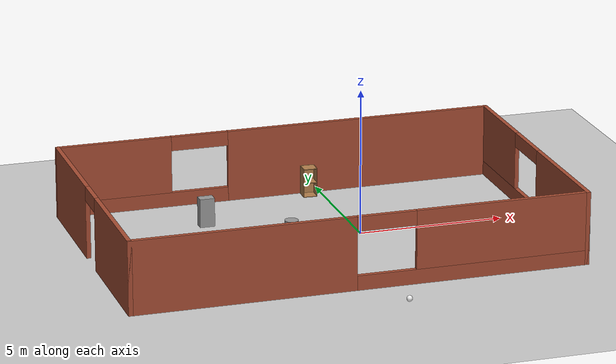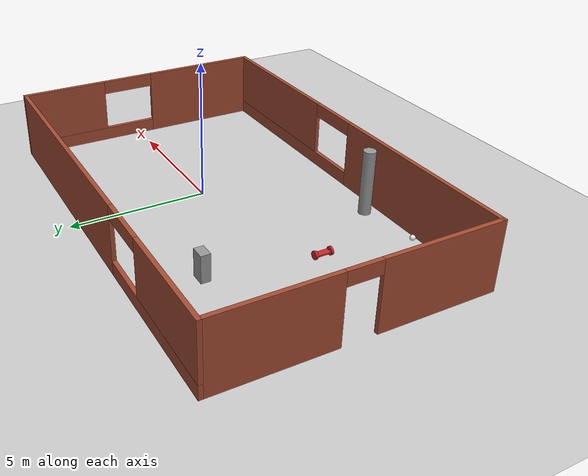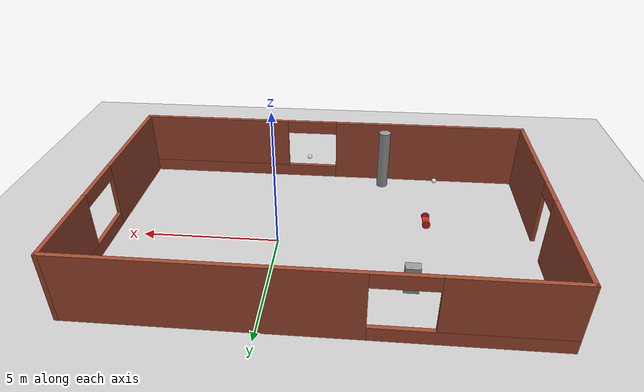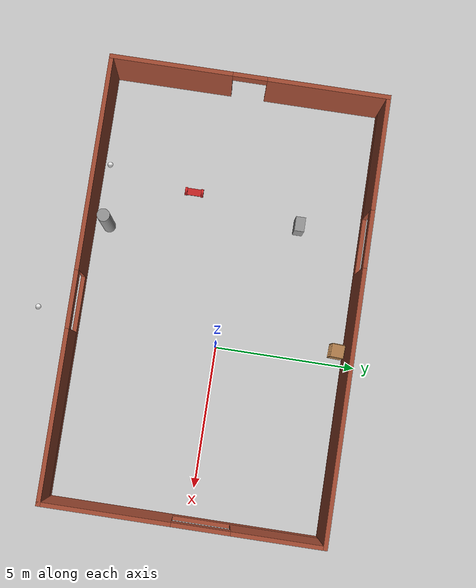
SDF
<sdf version="1.6">
 <world name="default">
  <model name="ground_plane">
   <static>1</static>
   <link name="link">
    <collision name="collision">
     <geometry><plane><normal>0 0 1</normal><size>100 100</size></plane></geometry>
     <surface><friction><ode><mu>100</mu><mu2>50</mu2></ode></friction></surface>
    </collision>
    <visual name="visual">
     <cast_shadows>0</cast_shadows>
     <geometry><plane><normal>0 0 1</normal><size>100 100</size></plane></geometry>
     <material>
      <script><uri>file://media/materials/scripts/gazebo.material</uri><name>Gazebo/Grey</name></script>
     </material>
    </visual>
   </link>
  </model>
  <model name="mybuilding">
   <pose>-1.56724 -0.21095 0 0 -0 0</pose>
   <link name="Wall_3">
    <pose>0 -4.8 0 0 -0 0</pose>
    <visual name="Wall_3_Visual_0">
     <pose>-3.97859 0 1.25 0 -0 0</pose>
     <geometry><box><size>7.54281 0.15 2.5</size></box></geometry>
     <material>
      <script><uri>file://media/materials/scripts/gazebo.material</uri><name>Gazebo/Bricks</name></script>
      <ambient>1 1 1 1</ambient>
     </material>
    </visual>
    <collision name="Wall_3_Collision_0">
     <geometry><box><size>7.54281 0.15 2.5</size></box></geometry>
     <pose>-3.97859 0 1.25 0 -0 0</pose>
    </collision>
    <visual name="Wall_3_Visual_1">
     <pose>3.77141 0 0.25 0 -0 0</pose>
     <geometry><box><size>7.95719 0.15 0.5</size></box></geometry>
     <material>
      <script><uri>file://media/materials/scripts/gazebo.material</uri><name>Gazebo/Bricks</name></script>
      <ambient>1 1 1 1</ambient>
     </material>
    </visual>
    <collision name="Wall_3_Collision_1">
     <geometry><box><size>7.95719 0.15 0.5</size></box></geometry>
     <pose>3.77141 0 0.25 0 -0 0</pose>
    </collision>
    <visual name="Wall_3_Visual_2">
     <pose>4.77141 0 1.5 0 -0 0</pose>
     <geometry><box><size>5.95719 0.15 2</size></box></geometry>
     <material>
      <script><uri>file://media/materials/scripts/gazebo.material</uri><name>Gazebo/Bricks</name></script>
      <ambient>1 1 1 1</ambient>
     </material>
    </visual>
    <collision name="Wall_3_Collision_2">
     <geometry><box><size>5.95719 0.15 2</size></box></geometry>
     <pose>4.77141 0 1.5 0 -0 0</pose>
    </collision>
    <visual name="Wall_3_Visual_3">
     <pose>0.792814 0 2.25 0 -0 0</pose>
     <geometry><box><size>2 0.15 0.5</size></box></geometry>
     <material>
      <script><uri>file://media/materials/scripts/gazebo.material</uri><name>Gazebo/Bricks</name></script>
      <ambient>1 1 1 1</ambient>
     </material>
    </visual>
    <collision name="Wall_3_Collision_3">
     <geometry><box><size>2 0.15 0.5</size></box></geometry>
     <pose>0.792814 0 2.25 0 -0 0</pose>
    </collision>
   </link>
   <link name="Wall_4">
    <pose>7.675 0 0 0 -0 1.5708</pose>
    <visual name="Wall_4_Visual_0">
     <pose>-2.62217 0 1.25 0 -0 0</pose>
     <geometry><box><size>4.50566 0.15 2.5</size></box></geometry>
     <material>
      <script><uri>file://media/materials/scripts/gazebo.material</uri><name>Gazebo/Bricks</name></script>
      <ambient>1 1 1 1</ambient>
     </material>
    </visual>
    <collision name="Wall_4_Collision_0">
     <geometry><box><size>4.50566 0.15 2.5</size></box></geometry>
     <pose>-2.62217 0 1.25 0 -0 0</pose>
    </collision>
    <visual name="Wall_4_Visual_1">
     <pose>2.25283 0 0.25 0 -0 0</pose>
     <geometry><box><size>5.24434 0.15 0.5</size></box></geometry>
     <material>
      <script><uri>file://media/materials/scripts/gazebo.material</uri><name>Gazebo/Bricks</name></script>
      <ambient>1 1 1 1</ambient>
     </material>
    </visual>
    <collision name="Wall_4_Collision_1">
     <geometry><box><size>5.24434 0.15 0.5</size></box></geometry>
     <pose>2.25283 0 0.25 0 -0 0</pose>
    </collision>
    <visual name="Wall_4_Visual_2">
     <pose>3.25283 0 1.5 0 -0 0</pose>
     <geometry><box><size>3.24434 0.15 2</size></box></geometry>
     <material>
      <script><uri>file://media/materials/scripts/gazebo.material</uri><name>Gazebo/Bricks</name></script>
      <ambient>1 1 1 1</ambient>
     </material>
    </visual>
    <collision name="Wall_4_Collision_2">
     <geometry><box><size>3.24434 0.15 2</size></box></geometry>
     <pose>3.25283 0 1.5 0 -0 0</pose>
    </collision>
    <visual name="Wall_4_Visual_3">
     <pose>0.630664 0 2.25 0 -0 0</pose>
     <geometry><box><size>2 0.15 0.5</size></box></geometry>
     <material>
      <script><uri>file://media/materials/scripts/gazebo.material</uri><name>Gazebo/Bricks</name></script>
      <ambient>1 1 1 1</ambient>
     </material>
    </visual>
    <collision name="Wall_4_Collision_3">
     <geometry><box><size>2 0.15 0.5</size></box></geometry>
     <pose>0.630664 0 2.25 0 -0 0</pose>
    </collision>
   </link>
   <link name="Wall_5">
    <pose>0 4.8 0 0 -0 3.14159</pose>
    <visual name="Wall_5_Visual_0">
     <pose>-3.01147 0 1.25 0 -0 0</pose>
     <geometry><box><size>9.47706 0.15 2.5</size></box></geometry>
     <material>
      <script><uri>file://media/materials/scripts/gazebo.material</uri><name>Gazebo/Bricks</name></script>
      <ambient>1 1 1 1</ambient>
     </material>
    </visual>
    <collision name="Wall_5_Collision_0">
     <geometry><box><size>9.47706 0.15 2.5</size></box></geometry>
     <pose>-3.01147 0 1.25 0 -0 0</pose>
    </collision>
    <visual name="Wall_5_Visual_1">
     <pose>4.73853 0 0.25 0 -0 0</pose>
     <geometry><box><size>6.02294 0.15 0.5</size></box></geometry>
     <material>
      <script><uri>file://media/materials/scripts/gazebo.material</uri><name>Gazebo/Bricks</name></script>
      <ambient>1 1 1 1</ambient>
     </material>
    </visual>
    <collision name="Wall_5_Collision_1">
     <geometry><box><size>6.02294 0.15 0.5</size></box></geometry>
     <pose>4.73853 0 0.25 0 -0 0</pose>
    </collision>
    <visual name="Wall_5_Visual_2">
     <pose>5.73853 0 1.5 0 -0 0</pose>
     <geometry><box><size>4.02294 0.15 2</size></box></geometry>
     <material>
      <script><uri>file://media/materials/scripts/gazebo.material</uri><name>Gazebo/Bricks</name></script>
      <ambient>1 1 1 1</ambient>
     </material>
    </visual>
    <collision name="Wall_5_Collision_2">
     <geometry><box><size>4.02294 0.15 2</size></box></geometry>
     <pose>5.73853 0 1.5 0 -0 0</pose>
    </collision>
    <visual name="Wall_5_Visual_3">
     <pose>2.72706 0 2.25 0 -0 0</pose>
     <geometry><box><size>2 0.15 0.5</size></box></geometry>
     <material>
      <script><uri>file://media/materials/scripts/gazebo.material</uri><name>Gazebo/Bricks</name></script>
      <ambient>1 1 1 1</ambient>
     </material>
    </visual>
    <collision name="Wall_5_Collision_3">
     <geometry><box><size>2 0.15 0.5</size></box></geometry>
     <pose>2.72706 0 2.25 0 -0 0</pose>
    </collision>
   </link>
   <link name="Wall_6">
    <pose>-7.675 0 0 0 0 -1.5708</pose>
    <visual name="Wall_6_Visual_0">
     <pose>-2.74107 0 1.25 0 -0 0</pose>
     <geometry><box><size>4.26786 0.15 2.5</size></box></geometry>
     <material>
      <script><uri>file://media/materials/scripts/gazebo.material</uri><name>Gazebo/Bricks</name></script>
      <ambient>1 1 1 1</ambient>
     </material>
    </visual>
    <collision name="Wall_6_Collision_0">
     <geometry><box><size>4.26786 0.15 2.5</size></box></geometry>
     <pose>-2.74107 0 1.25 0 -0 0</pose>
    </collision>
    <visual name="Wall_6_Visual_1">
     <pose>2.73393 0 1.25 0 -0 0</pose>
     <geometry><box><size>4.28214 0.15 2.5</size></box></geometry>
     <material>
      <script><uri>file://media/materials/scripts/gazebo.material</uri><name>Gazebo/Bricks</name></script>
      <ambient>1 1 1 1</ambient>
     </material>
    </visual>
    <collision name="Wall_6_Collision_1">
     <geometry><box><size>4.28214 0.15 2.5</size></box></geometry>
     <pose>2.73393 0 1.25 0 -0 0</pose>
    </collision>
    <visual name="Wall_6_Visual_2">
     <pose>-0.007144 0 2.25 0 -0 0</pose>
     <geometry><box><size>1.2 0.15 0.5</size></box></geometry>
     <material>
      <script><uri>file://media/materials/scripts/gazebo.material</uri><name>Gazebo/Bricks</name></script>
      <ambient>1 1 1 1</ambient>
     </material>
    </visual>
    <collision name="Wall_6_Collision_2">
     <geometry><box><size>1.2 0.15 0.5</size></box></geometry>
     <pose>-0.007144 0 2.25 0 -0 0</pose>
    </collision>
   </link>
   <static>1</static>
  </model>
  <model name="cabinet">
   <static>1</static>
   <link name="cabinet_bottom_plate">
    <inertial>
     <pose>0 0 -1 0 -0 0</pose>
     <inertia><ixx>2.05</ixx><ixy>0</ixy><ixz>0</ixz><iyy>2.05</iyy><iyz>0</iyz><izz>2.05</izz></inertia>
     <mass>25</mass>
    </inertial>
    <collision name="cabinet_bottom_plate_geom">
     <pose>0 0 0.01 0 -0 0</pose>
     <geometry><box><size>0.45 0.45 0.02</size></box></geometry>
    </collision>
    <visual name="cabinet_bottom_plate_geom_visual">
     <pose>0 0 0.01 0 -0 0</pose>
     <geometry><box><size>0.45 0.45 0.02</size></box></geometry>
     <material>
      <script><uri>file://media/materials/scripts/gazebo.material</uri><name>Gazebo/Wood</name></script>
     </material>
    </visual>
    <collision name="cabinet_bottom_plate_geom_cabinet_back_plate">
     <pose>0.235 0 0.51 0 -0 0</pose>
     <geometry><box><size>0.02 0.45 1.02</size></box></geometry>
    </collision>
    <visual name="cabinet_bottom_plate_geom_cabinet_back_plate_visual">
     <pose>0.235 0 0.51 0 -0 0</pose>
     <geometry><box><size>0.02 0.45 1.02</size></box></geometry>
     <material>
      <script><uri>file://media/materials/scripts/gazebo.material</uri><name>Gazebo/Wood</name></script>
     </material>
    </visual>
    <collision name="cabinet_bottom_plate_geom_cabinet_left_plate">
     <pose>0 0.235 0.51 0 -0 0</pose>
     <geometry><box><size>0.45 0.02 1.02</size></box></geometry>
    </collision>
    <visual name="cabinet_bottom_plate_geom_cabinet_left_plate_visual">
     <pose>0 0.235 0.51 0 -0 0</pose>
     <geometry><box><size>0.45 0.02 1.02</size></box></geometry>
     <material>
      <script><uri>file://media/materials/scripts/gazebo.material</uri><name>Gazebo/Wood</name></script>
     </material>
    </visual>
    <collision name="cabinet_bottom_plate_geom_cabinet_middle_plate">
     <pose>0 0 0.51 0 -0 0</pose>
     <geometry><box><size>0.45 0.45 0.02</size></box></geometry>
    </collision>
    <visual name="cabinet_bottom_plate_geom_cabinet_middle_plate_visual">
     <pose>0 0 0.51 0 -0 0</pose>
     <geometry><box><size>0.45 0.45 0.02</size></box></geometry>
     <material>
      <script><uri>file://media/materials/scripts/gazebo.material</uri><name>Gazebo/Wood</name></script>
     </material>
    </visual>
    <collision name="cabinet_bottom_plate_geom_cabinet_right_plate">
     <pose>0 -0.235 0.51 0 -0 0</pose>
     <geometry><box><size>0.45 0.02 1.02</size></box></geometry>
    </collision>
    <visual name="cabinet_bottom_plate_geom_cabinet_right_plate_visual">
     <pose>0 -0.235 0.51 0 -0 0</pose>
     <geometry><box><size>0.45 0.02 1.02</size></box></geometry>
     <material>
      <script><uri>file://media/materials/scripts/gazebo.material</uri><name>Gazebo/Wood</name></script>
     </material>
    </visual>
    <collision name="cabinet_bottom_plate_geom_cabinet_top_plate">
     <pose>0 0 1.01 0 -0 0</pose>
     <geometry><box><size>0.45 0.45 0.02</size></box></geometry>
    </collision>
    <visual name="cabinet_bottom_plate_geom_cabinet_top_plate_visual">
     <pose>0 0 1.01 0 -0 0</pose>
     <geometry><box><size>0.45 0.45 0.02</size></box></geometry>
     <material>
      <script><uri>file://media/materials/scripts/gazebo.material</uri><name>Gazebo/Wood</name></script>
     </material>
    </visual>
   </link>
   <pose>-0.479137 4.23603 0 0 -0 1.5262</pose>
  </model>
  <model name="my_ball">
   <link name="link_0">
    <inertial>
     <mass>1</mass>
     <inertia><ixx>0.1</ixx><ixy>0</ixy><ixz>0</ixz><iyy>0.1</iyy><iyz>0</iyz><izz>0.1</izz></inertia>
    </inertial>
    <visual name="visual">
     <geometry><sphere><radius>0.1</radius></sphere></geometry>
     <material>
      <lighting>1</lighting>
      <script><uri>file://media/materials/scripts/gazebo.material</uri><name>Gazebo/White</name></script>
      <ambient>1 1 1 1</ambient>
      <diffuse>1 1 1 1</diffuse>
      <specular>1 1 1 1</specular>
      <emissive>1 1 1 1</emissive>
      <shader type="vertex"><normal_map>__default__</normal_map></shader>
     </material>
    </visual>
    <collision name="collision">
     <geometry><sphere><radius>0.1</radius></sphere></geometry>
     <surface>
      <friction>
       <ode><mu>1</mu><mu2>1</mu2><fdir1>0 0 0</fdir1><slip1>0</slip1><slip2>0</slip2></ode>
       <torsional>
        <coefficient>1</coefficient>
        <patch_radius>0</patch_radius>
        <surface_radius>0</surface_radius>
        <use_patch_radius>1</use_patch_radius>
        <ode><slip>0</slip></ode>
       </torsional>
      </friction>
      <bounce><restitution_coefficient>0</restitution_coefficient><threshold>1e+06</threshold></bounce>
      <contact>
       <collide_without_contact>0</collide_without_contact>
       <collide_without_contact_bitmask>1</collide_without_contact_bitmask>
       <collide_bitmask>1</collide_bitmask>
       <ode>
        <soft_cfm>0</soft_cfm>
        <soft_erp>0.2</soft_erp>
        <kp>1e+13</kp>
        <kd>1</kd>
        <max_vel>0.01</max_vel>
        <min_depth>0</min_depth>
       </ode>
       <bullet>
        <split_impulse>1</split_impulse>
        <split_impulse_penetration_threshold>-0.01</split_impulse_penetration_threshold>
        <soft_cfm>0</soft_cfm>
        <soft_erp>0.2</soft_erp>
        <kp>1e+13</kp>
        <kd>1</kd>
       </bullet>
      </contact>
     </surface>
    </collision>
   </link>
   <static>0</static>
   <pose>-0.495295 -6.48646 0.1 0 -0 0</pose>
  </model>
  <model name="myrobot_1_clone">
   <link name="link_2">
    <pose>0 0.290015 0 1.5707 -0 0</pose>
    <inertial>
     <mass>0.0501056</mass>
     <inertia>
      <ixx>0.00149856</ixx>
      <ixy>0</ixy>
      <ixz>0</ixz>
      <iyy>0.00149856</iyy>
      <iyz>0</iyz>
      <izz>0.00289929</izz>
     </inertia>
    </inertial>
    <visual name="visual">
     <geometry><cylinder><radius>0.15</radius><length>0.0800003</length></cylinder></geometry>
     <material>
      <lighting>1</lighting>
      <script><uri>file://media/materials/scripts/gazebo.material</uri><name>Gazebo/Red</name></script>
      <ambient>1 0 0 1</ambient>
      <diffuse>0.7 0.7 0.7 1</diffuse>
      <specular>0.01 0.01 0.01 1</specular>
      <emissive>0 0 0 1</emissive>
      <shader type="vertex"><normal_map>__default__</normal_map></shader>
     </material>
    </visual>
    <collision name="collision">
     <geometry><cylinder><radius>0.15</radius><length>0.08</length></cylinder></geometry>
     <surface>
      <friction>
       <ode><mu>1</mu><mu2>1</mu2><fdir1>0 0 0</fdir1><slip1>0</slip1><slip2>0</slip2></ode>
       <torsional>
        <coefficient>1</coefficient>
        <patch_radius>0</patch_radius>
        <surface_radius>0</surface_radius>
        <use_patch_radius>1</use_patch_radius>
        <ode><slip>0</slip></ode>
       </torsional>
      </friction>
      <bounce><restitution_coefficient>0</restitution_coefficient><threshold>1e+06</threshold></bounce>
      <contact>
       <collide_without_contact>0</collide_without_contact>
       <collide_without_contact_bitmask>1</collide_without_contact_bitmask>
       <collide_bitmask>1</collide_bitmask>
       <ode>
        <soft_cfm>0</soft_cfm>
        <soft_erp>0.2</soft_erp>
        <kp>1e+13</kp>
        <kd>1</kd>
        <max_vel>0.01</max_vel>
        <min_depth>0</min_depth>
       </ode>
       <bullet>
        <split_impulse>1</split_impulse>
        <split_impulse_penetration_threshold>-0.01</split_impulse_penetration_threshold>
        <soft_cfm>0</soft_cfm>
        <soft_erp>0.2</soft_erp>
        <kp>1e+13</kp>
        <kd>1</kd>
       </bullet>
      </contact>
     </surface>
    </collision>
   </link>
   <link name="link_2_clone">
    <pose>0 -0.290014 0 1.5707 -0 0</pose>
    <inertial>
     <mass>0.0501056</mass>
     <inertia>
      <ixx>0.00149856</ixx>
      <ixy>0</ixy>
      <ixz>0</ixz>
      <iyy>0.00149856</iyy>
      <iyz>0</iyz>
      <izz>0.00289929</izz>
     </inertia>
    </inertial>
    <visual name="visual">
     <geometry><cylinder><radius>0.15</radius><length>0.0800003</length></cylinder></geometry>
     <material>
      <lighting>1</lighting>
      <script><uri>file://media/materials/scripts/gazebo.material</uri><name>Gazebo/Red</name></script>
      <ambient>1 0 0 1</ambient>
      <diffuse>0.7 0.7 0.7 1</diffuse>
      <specular>0.01 0.01 0.01 1</specular>
      <emissive>0 0 0 1</emissive>
      <shader type="vertex"><normal_map>__default__</normal_map></shader>
     </material>
    </visual>
    <collision name="collision">
     <geometry><cylinder><radius>0.15</radius><length>0.08</length></cylinder></geometry>
     <surface>
      <friction>
       <ode><mu>1</mu><mu2>1</mu2><fdir1>0 0 0</fdir1><slip1>0</slip1><slip2>0</slip2></ode>
       <torsional>
        <coefficient>1</coefficient>
        <patch_radius>0</patch_radius>
        <surface_radius>0</surface_radius>
        <use_patch_radius>1</use_patch_radius>
        <ode><slip>0</slip></ode>
       </torsional>
      </friction>
      <bounce><restitution_coefficient>0</restitution_coefficient><threshold>1e+06</threshold></bounce>
      <contact>
       <collide_without_contact>0</collide_without_contact>
       <collide_without_contact_bitmask>1</collide_without_contact_bitmask>
       <collide_bitmask>1</collide_bitmask>
       <ode>
        <soft_cfm>0</soft_cfm>
        <soft_erp>0.2</soft_erp>
        <kp>1e+13</kp>
        <kd>1</kd>
        <max_vel>0.01</max_vel>
        <min_depth>0</min_depth>
       </ode>
       <bullet>
        <split_impulse>1</split_impulse>
        <split_impulse_penetration_threshold>-0.01</split_impulse_penetration_threshold>
        <soft_cfm>0</soft_cfm>
        <soft_erp>0.2</soft_erp>
        <kp>1e+13</kp>
        <kd>1</kd>
       </bullet>
      </contact>
     </surface>
    </collision>
   </link>
   <link name="link_3">
    <inertial>
     <mass>1</mass>
     <inertia>
      <ixx>0.166667</ixx>
      <ixy>0</ixy>
      <ixz>0</ixz>
      <iyy>0.166667</iyy>
      <iyz>0</iyz>
      <izz>0.166667</izz>
     </inertia>
    </inertial>
    <visual name="visual">
     <geometry><box><size>0.25 0.5 0.05</size></box></geometry>
     <material>
      <lighting>1</lighting>
      <script><uri>file://media/materials/scripts/gazebo.material</uri><name>Gazebo/Red</name></script>
      <ambient>1 0 0 1</ambient>
      <diffuse>0.7 0.7 0.7 1</diffuse>
      <specular>0.01 0.01 0.01 1</specular>
      <emissive>0 0 0 1</emissive>
      <shader type="vertex"><normal_map>__default__</normal_map></shader>
     </material>
    </visual>
    <collision name="collision">
     <geometry><box><size>0.25 0.5 0.05</size></box></geometry>
     <surface>
      <friction>
       <ode><mu>1</mu><mu2>1</mu2><fdir1>0 0 0</fdir1><slip1>0</slip1><slip2>0</slip2></ode>
       <torsional>
        <coefficient>1</coefficient>
        <patch_radius>0</patch_radius>
        <surface_radius>0</surface_radius>
        <use_patch_radius>1</use_patch_radius>
        <ode><slip>0</slip></ode>
       </torsional>
      </friction>
      <bounce><restitution_coefficient>0</restitution_coefficient><threshold>1e+06</threshold></bounce>
      <contact>
       <collide_without_contact>0</collide_without_contact>
       <collide_without_contact_bitmask>1</collide_without_contact_bitmask>
       <collide_bitmask>1</collide_bitmask>
       <ode>
        <soft_cfm>0</soft_cfm>
        <soft_erp>0.2</soft_erp>
        <kp>1e+13</kp>
        <kd>1</kd>
        <max_vel>0.01</max_vel>
        <min_depth>0</min_depth>
       </ode>
       <bullet>
        <split_impulse>1</split_impulse>
        <split_impulse_penetration_threshold>-0.01</split_impulse_penetration_threshold>
        <soft_cfm>0</soft_cfm>
        <soft_erp>0.2</soft_erp>
        <kp>1e+13</kp>
        <kd>1</kd>
       </bullet>
      </contact>
     </surface>
    </collision>
   </link>
   <joint name="link_2_JOINT_1" type="revolute">
    <parent>link_3</parent>
    <child>link_2_clone</child>
    <axis>
     <xyz>0 0 1</xyz>
     <use_parent_model_frame>0</use_parent_model_frame>
     <limit>
      <lower>-1.79769e+308</lower>
      <upper>1.79769e+308</upper>
      <effort>-1</effort>
      <velocity>-1</velocity>
     </limit>
     <dynamics>
      <spring_reference>0</spring_reference>
      <spring_stiffness>0</spring_stiffness>
      <damping>0</damping>
     </dynamics>
    </axis>
    <physics>
     <ode><limit><cfm>0</cfm><erp>0.2</erp></limit><suspension><cfm>0</cfm><erp>0.2</erp></suspension></ode>
    </physics>
   </joint>
   <joint name="link_3_JOINT_2" type="revolute">
    <parent>link_3</parent>
    <child>link_2</child>
    <axis>
     <xyz>0 0 1</xyz>
     <use_parent_model_frame>0</use_parent_model_frame>
     <limit>
      <lower>-1.79769e+308</lower>
      <upper>1.79769e+308</upper>
      <effort>-1</effort>
      <velocity>-1</velocity>
     </limit>
     <dynamics>
      <spring_reference>0</spring_reference>
      <spring_stiffness>0</spring_stiffness>
      <damping>0</damping>
     </dynamics>
    </axis>
    <physics>
     <ode><limit><cfm>0</cfm><erp>0.2</erp></limit><suspension><cfm>0</cfm><erp>0.2</erp></suspension></ode>
    </physics>
   </joint>
   <static>0</static>
   <pose>-5.4247 -1.58691 0.149998 1e-06 0.012934 2e-05</pose>
  </model>
  <model name="my_ball_clone">
   <link name="link_0">
    <inertial>
     <mass>1</mass>
     <inertia><ixx>0.1</ixx><ixy>0</ixy><ixz>0</ixz><iyy>0.1</iyy><iyz>0</iyz><izz>0.1</izz></inertia>
    </inertial>
    <visual name="visual">
     <geometry><sphere><radius>0.1</radius></sphere></geometry>
     <material>
      <lighting>1</lighting>
      <script><uri>file://media/materials/scripts/gazebo.material</uri><name>Gazebo/White</name></script>
      <ambient>1 1 1 1</ambient>
      <diffuse>1 1 1 1</diffuse>
      <specular>1 1 1 1</specular>
      <emissive>1 1 1 1</emissive>
      <shader type="vertex"><normal_map>__default__</normal_map></shader>
     </material>
    </visual>
    <collision name="collision">
     <geometry><sphere><radius>0.1</radius></sphere></geometry>
     <surface>
      <friction>
       <ode><mu>1</mu><mu2>1</mu2><fdir1>0 0 0</fdir1><slip1>0</slip1><slip2>0</slip2></ode>
       <torsional>
        <coefficient>1</coefficient>
        <patch_radius>0</patch_radius>
        <surface_radius>0</surface_radius>
        <use_patch_radius>1</use_patch_radius>
        <ode><slip>0</slip></ode>
       </torsional>
      </friction>
      <bounce><restitution_coefficient>0</restitution_coefficient><threshold>1e+06</threshold></bounce>
      <contact>
       <collide_without_contact>0</collide_without_contact>
       <collide_without_contact_bitmask>1</collide_without_contact_bitmask>
       <collide_bitmask>1</collide_bitmask>
       <ode>
        <soft_cfm>0</soft_cfm>
        <soft_erp>0.2</soft_erp>
        <kp>1e+13</kp>
        <kd>1</kd>
        <max_vel>0.01</max_vel>
        <min_depth>0</min_depth>
       </ode>
       <bullet>
        <split_impulse>1</split_impulse>
        <split_impulse_penetration_threshold>-0.01</split_impulse_penetration_threshold>
        <soft_cfm>0</soft_cfm>
        <soft_erp>0.2</soft_erp>
        <kp>1e+13</kp>
        <kd>1</kd>
       </bullet>
      </contact>
     </surface>
    </collision>
   </link>
   <static>0</static>
   <pose>-5.97819 -4.75263 0.1 0 -0 0</pose>
  </model>
  <model name="unit_box_0">
   <pose>-4.70847 2.30505 0.5 0 -0 8.5e-05</pose>
   <link name="link">
    <inertial>
     <mass>1</mass>
     <inertia>
      <ixx>0.166667</ixx>
      <ixy>0</ixy>
      <ixz>0</ixz>
      <iyy>0.166667</iyy>
      <iyz>0</iyz>
      <izz>0.166667</izz>
     </inertia>
    </inertial>
    <collision name="collision"><geometry><box><size>0.512075 0.345394 1</size></box></geometry></collision>
    <visual name="visual">
     <geometry><box><size>0.512075 0.345394 1</size></box></geometry>
     <material>
      <script><name>Gazebo/Grey</name><uri>file://media/materials/scripts/gazebo.material</uri></script>
     </material>
    </visual>
   </link>
  </model>
  <model name="unit_cylinder_0">
   <pose>-3.7697 -4.43119 1.19613 0 -0 0.000108</pose>
   <link name="link">
    <inertial>
     <mass>1</mass>
     <inertia><ixx>0.145833</ixx><ixy>0</ixy><ixz>0</ixz><iyy>0.145833</iyy><iyz>0</iyz><izz>0.125</izz></inertia>
    </inertial>
    <collision name="collision">
     <geometry><cylinder><radius>0.22354</radius><length>2.39228</length></cylinder></geometry>
    </collision>
    <visual name="visual">
     <geometry><cylinder><radius>0.22354</radius><length>2.39228</length></cylinder></geometry>
     <material>
      <script><name>Gazebo/Grey</name><uri>file://media/materials/scripts/gazebo.material</uri></script>
     </material>
    </visual>
   </link>
  </model>
 </world>
</sdf>
